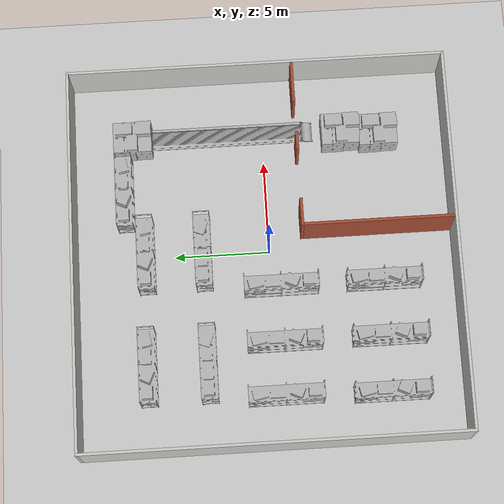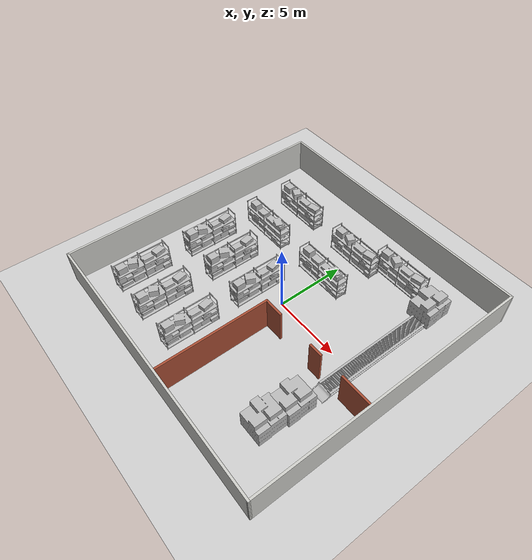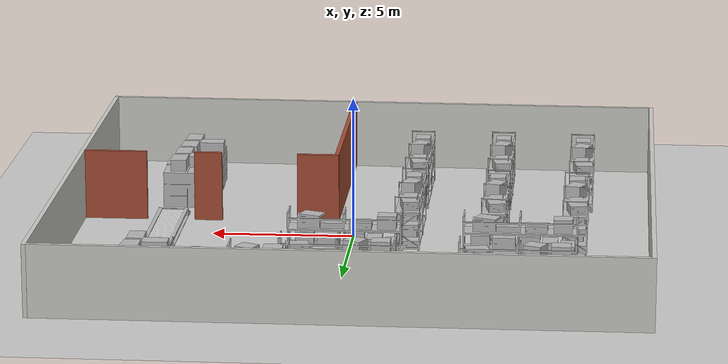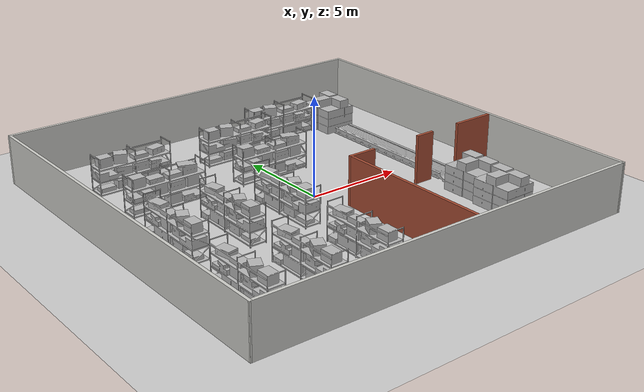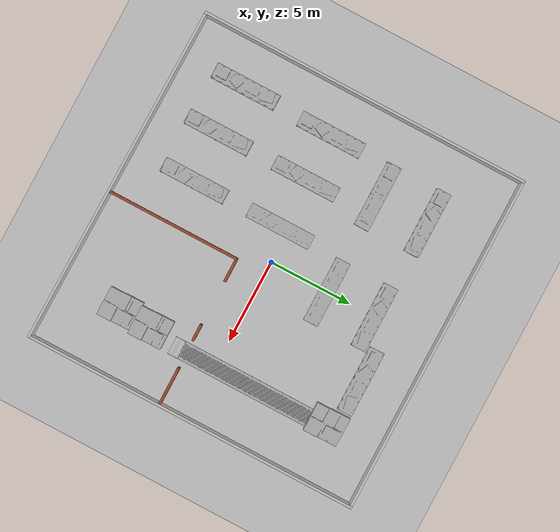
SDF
<sdf version="1.7">
 <world name="default">
  <light name="sun" type="directional">
   <pose>0 0 10 0 -0 0</pose>
   <diffuse>0.8 0.8 0.8 1</diffuse>
   <specular>0.2 0.2 0.2 1</specular>
   <attenuation>
    <range>1000</range>
    <constant>0.9</constant>
    <linear>0.01</linear>
    <quadratic>0.001</quadratic>
   </attenuation>
   <direction>-0.5 0.1 -0.9</direction>
   <spot><inner_angle>0</inner_angle><outer_angle>0</outer_angle><falloff>0</falloff></spot>
  </light>
  <model name="ground_plane">
   <static>1</static>
   <link name="link">
    <collision name="collision">
     <geometry><plane><normal>0 0 1</normal><size>100 100</size></plane></geometry>
     <surface><friction><ode><mu>100</mu><mu2>50</mu2></ode></friction></surface>
    </collision>
    <visual name="visual">
     <cast_shadows>0</cast_shadows>
     <geometry><plane><normal>0 0 1</normal><size>100 100</size></plane></geometry>
     <material>
      <script><uri>file://media/materials/scripts/gazebo.material</uri><name>Gazebo/Grey</name></script>
     </material>
    </visual>
   </link>
  </model>
  <gravity>0 0 -9.8</gravity>
  <magnetic_field>6e-06 2.3e-05 -4.2e-05</magnetic_field>
  <atmosphere type="adiabatic"/>
  <physics type="ode">
   <max_step_size>0.001</max_step_size>
   <real_time_factor>1</real_time_factor>
   <real_time_update_rate>1000</real_time_update_rate>
  </physics>
  <scene><ambient>0.4 0.4 0.4 1</ambient><background>0.7 0.7 0.7 1</background><shadows>1</shadows></scene>
  <spherical_coordinates>
   <surface_model>EARTH_WGS84</surface_model>
   <latitude_deg>0</latitude_deg>
   <longitude_deg>0</longitude_deg>
   <elevation>0</elevation>
   <heading_deg>0</heading_deg>
  </spherical_coordinates>
  <model name="warehouse">
   <pose>-0.2967 0.167068 0 0 -0 0</pose>
   <link name="Wall_0">
    <collision name="Wall_0_Collision">
     <geometry><box><size>20 0.15 2.5</size></box></geometry>
     <pose>0 0 1.25 0 -0 0</pose>
    </collision>
    <visual name="Wall_0_Visual">
     <pose>0 0 1.25 0 -0 0</pose>
     <geometry><box><size>20 0.15 2.5</size></box></geometry>
     <material>
      <script><uri>file://media/materials/scripts/gazebo.material</uri><name>Gazebo/CeilingTiled</name></script>
      <ambient>1 1 1 1</ambient>
     </material>
     <meta><layer>0</layer></meta>
    </visual>
    <pose>-10.175 0.106729 0 0 -0 -1.5708</pose>
   </link>
   <link name="Wall_2">
    <collision name="Wall_2_Collision">
     <geometry><box><size>20.5013 0.15 2.5</size></box></geometry>
     <pose>0 0 1.25 0 -0 0</pose>
    </collision>
    <visual name="Wall_2_Visual">
     <pose>0 0 1.25 0 -0 0</pose>
     <geometry><box><size>20.5013 0.15 2.5</size></box></geometry>
     <material>
      <script><uri>file://media/materials/scripts/gazebo.material</uri><name>Gazebo/CeilingTiled</name></script>
      <ambient>1 1 1 1</ambient>
     </material>
     <meta><layer>0</layer></meta>
    </visual>
    <pose>0 -9.93392 0 0 -0 -0.011366</pose>
   </link>
   <link name="Wall_3">
    <collision name="Wall_3_Collision">
     <geometry><box><size>20.25 0.15 2.5</size></box></geometry>
     <pose>0 0 1.25 0 -0 0</pose>
    </collision>
    <visual name="Wall_3_Visual">
     <pose>0 0 1.25 0 -0 0</pose>
     <geometry><box><size>20.25 0.15 2.5</size></box></geometry>
     <material>
      <script><uri>file://media/materials/scripts/gazebo.material</uri><name>Gazebo/CeilingTiled</name></script>
      <ambient>1 1 1 1</ambient>
     </material>
     <meta><layer>0</layer></meta>
    </visual>
    <pose>10.175 0.000423 0 0 -0 1.5708</pose>
   </link>
   <link name="Wall_4">
    <collision name="Wall_4_Collision">
     <geometry><box><size>20.5 0.15 2.5</size></box></geometry>
     <pose>0 0 1.25 0 -0 0</pose>
    </collision>
    <visual name="Wall_4_Visual">
     <pose>0 0 1.25 0 -0 0</pose>
     <geometry><box><size>20.5 0.15 2.5</size></box></geometry>
     <material>
      <script><uri>file://media/materials/scripts/gazebo.material</uri><name>Gazebo/CeilingTiled</name></script>
      <ambient>1 1 1 1</ambient>
     </material>
     <meta><layer>0</layer></meta>
    </visual>
    <pose>0 10.0504 0 0 -0 3.14159</pose>
   </link>
   <static>1</static>
  </model>
  <model name="warehouse_wall_1">
   <pose>4.90744 -4.85107 0 0 -0 0</pose>
   <link name="Wall_11">
    <collision name="Wall_11_Collision">
     <geometry><box><size>1 0.15 2.5</size></box></geometry>
     <pose>0 0 1.25 0 -0 0</pose>
    </collision>
    <visual name="Wall_11_Visual">
     <pose>0 0 1.25 0 -0 0</pose>
     <geometry><box><size>1 0.15 2.5</size></box></geometry>
     <material>
      <script><uri>file://media/materials/scripts/gazebo.material</uri><name>Gazebo/Bricks</name></script>
      <ambient>1 1 1 1</ambient>
     </material>
     <meta><layer>0</layer></meta>
    </visual>
    <pose>0.454305 3.05181 0 0 -0 0</pose>
   </link>
   <link name="Wall_13">
    <collision name="Wall_13_Collision">
     <geometry><box><size>2.25 0.15 2.5</size></box></geometry>
     <pose>0 0 1.25 0 -0 0</pose>
    </collision>
    <visual name="Wall_13_Visual">
     <pose>0 0 1.25 0 -0 0</pose>
     <geometry><box><size>2.25 0.15 2.5</size></box></geometry>
     <material>
      <script><uri>file://media/materials/scripts/gazebo.material</uri><name>Gazebo/Bricks</name></script>
      <ambient>1 1 1 1</ambient>
     </material>
     <meta><layer>0</layer></meta>
    </visual>
    <pose>3.78243 3.08349 0 0 -0 0</pose>
   </link>
   <link name="Wall_6">
    <collision name="Wall_6_Collision">
     <geometry><box><size>8 0.15 2.5</size></box></geometry>
     <pose>0 0 1.25 0 -0 0</pose>
    </collision>
    <visual name="Wall_6_Visual">
     <pose>0 0 1.25 0 -0 0</pose>
     <geometry><box><size>8 0.15 2.5</size></box></geometry>
     <material>
      <script><uri>file://media/materials/scripts/gazebo.material</uri><name>Gazebo/Bricks</name></script>
      <ambient>1 1 1 1</ambient>
     </material>
     <meta><layer>0</layer></meta>
    </visual>
    <pose>-4.17364 -0.851073 0 0 -0 -1.5708</pose>
   </link>
   <link name="Wall_8">
    <collision name="Wall_8_Collision">
     <geometry><box><size>1.5 0.15 2.5</size></box></geometry>
     <pose>0 0 1.25 0 -0 0</pose>
    </collision>
    <visual name="Wall_8_Visual">
     <pose>0 0 1.25 0 -0 0</pose>
     <geometry><box><size>1.5 0.15 2.5</size></box></geometry>
     <material>
      <script><uri>file://media/materials/scripts/gazebo.material</uri><name>Gazebo/Bricks</name></script>
      <ambient>1 1 1 1</ambient>
     </material>
     <meta><layer>0</layer></meta>
    </visual>
    <pose>-3.49864 3.07393 0 0 -0 0</pose>
   </link>
   <static>1</static>
  </model>
  <model name="shipping_container_conveyor_ariac">
   <static>1</static>
   <link name="link">
    <collision name="collision_belt_side_front">
     <pose>1.191 1.6275 0.32 0 -0 0</pose>
     <geometry><box><size>0.137 7.98 0.3</size></box></geometry>
    </collision>
    <collision name="collision_belt_side_back">
     <pose>0.268 1.6275 0.32 0 -0 0</pose>
     <geometry><box><size>0.145 7.98 0.3</size></box></geometry>
    </collision>
    <visual name="visual">
     <geometry>
      <mesh>
       <scale>1.3 0.7 1</scale>
       <uri>model://shipping_container_conveyor_ariac/meshes/ShippingContainer_Textured.obj</uri>
      </mesh>
     </geometry>
    </visual>
   </link>
   <pose>5.94716 0.254888 -0.15 0 -0 0</pose>
  </model>
  <model name="aws_robomaker_warehouse_ClutteringC_01">
   <link name="link">
    <inertial>
     <mass>1</mass>
     <inertia><ixx>1.558</ixx><ixy>0</ixy><ixz>0</ixz><iyy>1.821</iyy><iyz>0</iyz><izz>1.892</izz></inertia>
    </inertial>
    <collision name="collision">
     <geometry>
      <mesh>
       <uri>model://aws_robomaker_warehouse_ClutteringC_01/meshes/aws_robomaker_warehouse_ClutteringC_01_collision.DAE</uri>
       <scale>1 1 1</scale>
      </mesh>
     </geometry>
     <surface>
      <friction>
       <ode><mu>0.6</mu><mu2>0.6</mu2><fdir1>0 0 0</fdir1><slip1>0</slip1><slip2>0</slip2></ode>
       <torsional>
        <coefficient>1</coefficient>
        <patch_radius>0</patch_radius>
        <surface_radius>0</surface_radius>
        <use_patch_radius>1</use_patch_radius>
        <ode><slip>0</slip></ode>
       </torsional>
      </friction>
     </surface>
    </collision>
    <visual name="visual">
     <geometry>
      <mesh>
       <uri>model://aws_robomaker_warehouse_ClutteringC_01/meshes/aws_robomaker_warehouse_ClutteringC_01_visual.DAE</uri>
      </mesh>
     </geometry>
     <meta><layer>1</layer></meta>
    </visual>
   </link>
   <static>1</static>
   <pose>6.33701 -4.2 0 0 -0 0</pose>
  </model>
  <model name="aws_robomaker_warehouse_ShelfE_01">
   <link name="link">
    <inertial>
     <mass>30</mass>
     <inertia><ixx>907.144</ixx><ixy>0</ixy><ixz>0</ixz><iyy>104.95</iyy><iyz>0</iyz><izz>824.248</izz></inertia>
    </inertial>
    <collision name="collision">
     <geometry>
      <mesh>
       <uri>model://aws_robomaker_warehouse_ShelfE_01/meshes/aws_robomaker_warehouse_ShelfE_01_collision.DAE</uri>
       <scale>1 1 1</scale>
      </mesh>
     </geometry>
     <surface>
      <friction><ode><mu>0.2</mu><mu2>0.2</mu2><fdir1>0 0 0</fdir1><slip1>0</slip1><slip2>0</slip2></ode></friction>
     </surface>
    </collision>
    <visual name="visual">
     <geometry>
      <mesh>
       <uri>model://aws_robomaker_warehouse_ShelfE_01/meshes/aws_robomaker_warehouse_ShelfE_01_visual.DAE</uri>
      </mesh>
     </geometry>
     <meta><layer>1</layer></meta>
    </visual>
   </link>
   <static>1</static>
   <pose>-6 3.5 -0.7 0 -0 0</pose>
  </model>
  <model name="aws_robomaker_warehouse_ShelfE_01_0">
   <link name="link">
    <inertial>
     <mass>30</mass>
     <inertia><ixx>907.144</ixx><ixy>0</ixy><ixz>0</ixz><iyy>104.95</iyy><iyz>0</iyz><izz>824.248</izz></inertia>
    </inertial>
    <collision name="collision">
     <geometry>
      <mesh>
       <uri>model://aws_robomaker_warehouse_ShelfE_01/meshes/aws_robomaker_warehouse_ShelfE_01_collision.DAE</uri>
       <scale>1 1 1</scale>
      </mesh>
     </geometry>
     <surface>
      <friction><ode><mu>0.2</mu><mu2>0.2</mu2><fdir1>0 0 0</fdir1><slip1>0</slip1><slip2>0</slip2></ode></friction>
     </surface>
    </collision>
    <visual name="visual">
     <geometry>
      <mesh>
       <uri>model://aws_robomaker_warehouse_ShelfE_01/meshes/aws_robomaker_warehouse_ShelfE_01_visual.DAE</uri>
      </mesh>
     </geometry>
     <meta><layer>1</layer></meta>
    </visual>
   </link>
   <static>1</static>
   <pose>0 3.5 -0.7 0 -0 0</pose>
  </model>
  <model name="aws_robomaker_warehouse_ShelfD_01">
   <link name="link">
    <inertial>
     <mass>30</mass>
     <inertia><ixx>907.144</ixx><ixy>0</ixy><ixz>0</ixz><iyy>104.95</iyy><iyz>0</iyz><izz>824.248</izz></inertia>
    </inertial>
    <collision name="collision">
     <geometry>
      <mesh>
       <uri>model://aws_robomaker_warehouse_ShelfD_01/meshes/aws_robomaker_warehouse_ShelfD_01_collision.DAE</uri>
       <scale>1 1 1</scale>
      </mesh>
     </geometry>
     <surface>
      <friction><ode><mu>0.2</mu><mu2>0.2</mu2><fdir1>0 0 0</fdir1><slip1>0</slip1><slip2>0</slip2></ode></friction>
     </surface>
    </collision>
    <visual name="visual">
     <geometry>
      <mesh>
       <uri>model://aws_robomaker_warehouse_ShelfD_01/meshes/aws_robomaker_warehouse_ShelfD_01_visual.DAE</uri>
      </mesh>
     </geometry>
     <meta><layer>1</layer></meta>
    </visual>
   </link>
   <static>1</static>
   <pose>-6 6.63287 -0.7 0 -0 0</pose>
  </model>
  <model name="aws_robomaker_warehouse_ShelfD_01_0">
   <link name="link">
    <inertial>
     <mass>30</mass>
     <inertia><ixx>907.144</ixx><ixy>0</ixy><ixz>0</ixz><iyy>104.95</iyy><iyz>0</iyz><izz>824.248</izz></inertia>
    </inertial>
    <collision name="collision">
     <geometry>
      <mesh>
       <uri>model://aws_robomaker_warehouse_ShelfD_01/meshes/aws_robomaker_warehouse_ShelfD_01_collision.DAE</uri>
       <scale>1 1 1</scale>
      </mesh>
     </geometry>
     <surface>
      <friction><ode><mu>0.2</mu><mu2>0.2</mu2><fdir1>0 0 0</fdir1><slip1>0</slip1><slip2>0</slip2></ode></friction>
     </surface>
    </collision>
    <visual name="visual">
     <geometry>
      <mesh>
       <uri>model://aws_robomaker_warehouse_ShelfD_01/meshes/aws_robomaker_warehouse_ShelfD_01_visual.DAE</uri>
      </mesh>
     </geometry>
     <meta><layer>1</layer></meta>
    </visual>
   </link>
   <static>1</static>
   <pose>0 6.5 -0.7 0 -0 0</pose>
  </model>
  <model name="aws_robomaker_warehouse_ShelfD_01_1">
   <link name="link">
    <inertial>
     <mass>30</mass>
     <inertia><ixx>907.144</ixx><ixy>0</ixy><ixz>0</ixz><iyy>104.95</iyy><iyz>0</iyz><izz>824.248</izz></inertia>
    </inertial>
    <collision name="collision">
     <geometry>
      <mesh>
       <uri>model://aws_robomaker_warehouse_ShelfD_01/meshes/aws_robomaker_warehouse_ShelfD_01_collision.DAE</uri>
       <scale>1 1 1</scale>
      </mesh>
     </geometry>
     <surface>
      <friction><ode><mu>0.2</mu><mu2>0.2</mu2><fdir1>0 0 0</fdir1><slip1>0</slip1><slip2>0</slip2></ode></friction>
     </surface>
    </collision>
    <visual name="visual">
     <geometry>
      <mesh>
       <uri>model://aws_robomaker_warehouse_ShelfD_01/meshes/aws_robomaker_warehouse_ShelfD_01_visual.DAE</uri>
      </mesh>
     </geometry>
     <meta><layer>1</layer></meta>
    </visual>
   </link>
   <static>1</static>
   <pose>-2 -0.5 -0.7 0 -0 1.57</pose>
  </model>
  <model name="aws_robomaker_warehouse_ShelfD_01_1_clone">
   <link name="link">
    <inertial>
     <mass>30</mass>
     <inertia><ixx>907.144</ixx><ixy>0</ixy><ixz>0</ixz><iyy>104.95</iyy><iyz>0</iyz><izz>824.248</izz></inertia>
    </inertial>
    <collision name="collision">
     <geometry>
      <mesh>
       <uri>model://aws_robomaker_warehouse_ShelfD_01/meshes/aws_robomaker_warehouse_ShelfD_01_collision.DAE</uri>
       <scale>1 1 1</scale>
      </mesh>
     </geometry>
     <surface>
      <friction><ode><mu>0.2</mu><mu2>0.2</mu2><fdir1>0 0 0</fdir1><slip1>0</slip1><slip2>0</slip2></ode></friction>
     </surface>
    </collision>
    <visual name="visual">
     <geometry>
      <mesh>
       <uri>model://aws_robomaker_warehouse_ShelfD_01/meshes/aws_robomaker_warehouse_ShelfD_01_visual.DAE</uri>
      </mesh>
     </geometry>
     <meta><layer>1</layer></meta>
    </visual>
   </link>
   <static>1</static>
   <pose>-5 -0.5 -0.7 0 -0 1.57</pose>
  </model>
  <model name="aws_robomaker_warehouse_ShelfD_01_1_clone_0">
   <link name="link">
    <inertial>
     <mass>30</mass>
     <inertia><ixx>907.144</ixx><ixy>0</ixy><ixz>0</ixz><iyy>104.95</iyy><iyz>0</iyz><izz>824.248</izz></inertia>
    </inertial>
    <collision name="collision">
     <geometry>
      <mesh>
       <uri>model://aws_robomaker_warehouse_ShelfD_01/meshes/aws_robomaker_warehouse_ShelfD_01_collision.DAE</uri>
       <scale>1 1 1</scale>
      </mesh>
     </geometry>
     <surface>
      <friction><ode><mu>0.2</mu><mu2>0.2</mu2><fdir1>0 0 0</fdir1><slip1>0</slip1><slip2>0</slip2></ode></friction>
     </surface>
    </collision>
    <visual name="visual">
     <geometry>
      <mesh>
       <uri>model://aws_robomaker_warehouse_ShelfD_01/meshes/aws_robomaker_warehouse_ShelfD_01_visual.DAE</uri>
      </mesh>
     </geometry>
     <meta><layer>1</layer></meta>
    </visual>
   </link>
   <static>1</static>
   <pose>-2 -5.88998 -0.7 0 -0 1.57</pose>
  </model>
  <model name="aws_robomaker_warehouse_ShelfD_01_1_clone_1">
   <link name="link">
    <inertial>
     <mass>30</mass>
     <inertia><ixx>907.144</ixx><ixy>0</ixy><ixz>0</ixz><iyy>104.95</iyy><iyz>0</iyz><izz>824.248</izz></inertia>
    </inertial>
    <collision name="collision">
     <geometry>
      <mesh>
       <uri>model://aws_robomaker_warehouse_ShelfD_01/meshes/aws_robomaker_warehouse_ShelfD_01_collision.DAE</uri>
       <scale>1 1 1</scale>
      </mesh>
     </geometry>
     <surface>
      <friction><ode><mu>0.2</mu><mu2>0.2</mu2><fdir1>0 0 0</fdir1><slip1>0</slip1><slip2>0</slip2></ode></friction>
     </surface>
    </collision>
    <visual name="visual">
     <geometry>
      <mesh>
       <uri>model://aws_robomaker_warehouse_ShelfD_01/meshes/aws_robomaker_warehouse_ShelfD_01_visual.DAE</uri>
      </mesh>
     </geometry>
     <meta><layer>1</layer></meta>
    </visual>
   </link>
   <static>1</static>
   <pose>-5 -5.9682 -0.7 0 -0 1.57</pose>
  </model>
  <model name="aws_robomaker_warehouse_ClutteringC_01_1">
   <link name="link">
    <inertial>
     <mass>1</mass>
     <inertia><ixx>1.558</ixx><ixy>0</ixy><ixz>0</ixz><iyy>1.821</iyy><iyz>0</iyz><izz>1.892</izz></inertia>
    </inertial>
    <collision name="collision">
     <geometry>
      <mesh>
       <uri>model://aws_robomaker_warehouse_ClutteringC_01/meshes/aws_robomaker_warehouse_ClutteringC_01_collision.DAE</uri>
       <scale>1 1 1</scale>
      </mesh>
     </geometry>
     <surface>
      <friction>
       <ode><mu>0.6</mu><mu2>0.6</mu2><fdir1>0 0 0</fdir1><slip1>0</slip1><slip2>0</slip2></ode>
       <torsional>
        <coefficient>1</coefficient>
        <patch_radius>0</patch_radius>
        <surface_radius>0</surface_radius>
        <use_patch_radius>1</use_patch_radius>
        <ode><slip>0</slip></ode>
       </torsional>
      </friction>
     </surface>
    </collision>
    <visual name="visual">
     <geometry>
      <mesh>
       <uri>model://aws_robomaker_warehouse_ClutteringC_01/meshes/aws_robomaker_warehouse_ClutteringC_01_visual.DAE</uri>
      </mesh>
     </geometry>
     <meta><layer>1</layer></meta>
    </visual>
   </link>
   <static>1</static>
   <pose>6.49861 6.95891 0 0 -0 0</pose>
  </model>
  <model name="aws_robomaker_warehouse_ClutteringC_01_0">
   <link name="link">
    <inertial>
     <mass>1</mass>
     <inertia><ixx>1.558</ixx><ixy>0</ixy><ixz>0</ixz><iyy>1.821</iyy><iyz>0</iyz><izz>1.892</izz></inertia>
    </inertial>
    <collision name="collision">
     <geometry>
      <mesh>
       <uri>model://aws_robomaker_warehouse_ClutteringC_01/meshes/aws_robomaker_warehouse_ClutteringC_01_collision.DAE</uri>
       <scale>1 1 1</scale>
      </mesh>
     </geometry>
     <surface>
      <friction>
       <ode><mu>0.6</mu><mu2>0.6</mu2><fdir1>0 0 0</fdir1><slip1>0</slip1><slip2>0</slip2></ode>
       <torsional>
        <coefficient>1</coefficient>
        <patch_radius>0</patch_radius>
        <surface_radius>0</surface_radius>
        <use_patch_radius>1</use_patch_radius>
        <ode><slip>0</slip></ode>
       </torsional>
      </friction>
     </surface>
    </collision>
    <visual name="visual">
     <geometry>
      <mesh>
       <uri>model://aws_robomaker_warehouse_ClutteringC_01/meshes/aws_robomaker_warehouse_ClutteringC_01_visual.DAE</uri>
      </mesh>
     </geometry>
     <meta><layer>1</layer></meta>
    </visual>
   </link>
   <static>1</static>
   <pose>6.2 -6.2 0 0 -0 0</pose>
  </model>
  <model name="aws_robomaker_warehouse_ShelfD_01_1_clone_1_clone">
   <link name="link">
    <inertial>
     <mass>30</mass>
     <inertia><ixx>907.144</ixx><ixy>0</ixy><ixz>0</ixz><iyy>104.95</iyy><iyz>0</iyz><izz>824.248</izz></inertia>
    </inertial>
    <collision name="collision">
     <geometry>
      <mesh>
       <uri>model://aws_robomaker_warehouse_ShelfD_01/meshes/aws_robomaker_warehouse_ShelfD_01_collision.DAE</uri>
       <scale>1 1 1</scale>
      </mesh>
     </geometry>
     <surface>
      <friction><ode><mu>0.2</mu><mu2>0.2</mu2><fdir1>0 0 0</fdir1><slip1>0</slip1><slip2>0</slip2></ode></friction>
     </surface>
    </collision>
    <visual name="visual">
     <geometry>
      <mesh>
       <uri>model://aws_robomaker_warehouse_ShelfD_01/meshes/aws_robomaker_warehouse_ShelfD_01_visual.DAE</uri>
      </mesh>
     </geometry>
     <meta><layer>1</layer></meta>
    </visual>
   </link>
   <static>1</static>
   <pose>-7.95437 -5.83764 -0.7 0 -0 1.57</pose>
  </model>
  <model name="aws_robomaker_warehouse_ShelfD_01_1_clone_1_clone_0">
   <link name="link">
    <inertial>
     <mass>30</mass>
     <inertia><ixx>907.144</ixx><ixy>0</ixy><ixz>0</ixz><iyy>104.95</iyy><iyz>0</iyz><izz>824.248</izz></inertia>
    </inertial>
    <collision name="collision">
     <geometry>
      <mesh>
       <uri>model://aws_robomaker_warehouse_ShelfD_01/meshes/aws_robomaker_warehouse_ShelfD_01_collision.DAE</uri>
       <scale>1 1 1</scale>
      </mesh>
     </geometry>
     <surface>
      <friction><ode><mu>0.2</mu><mu2>0.2</mu2><fdir1>0 0 0</fdir1><slip1>0</slip1><slip2>0</slip2></ode></friction>
     </surface>
    </collision>
    <visual name="visual">
     <geometry>
      <mesh>
       <uri>model://aws_robomaker_warehouse_ShelfD_01/meshes/aws_robomaker_warehouse_ShelfD_01_visual.DAE</uri>
      </mesh>
     </geometry>
     <meta><layer>1</layer></meta>
    </visual>
   </link>
   <static>1</static>
   <pose>-7.82227 -0.391682 -0.7 0 -0 1.57</pose>
  </model>
  <model name="aws_robomaker_warehouse_ShelfD_01_0_clone">
   <link name="link">
    <inertial>
     <mass>30</mass>
     <inertia><ixx>907.144</ixx><ixy>0</ixy><ixz>0</ixz><iyy>104.95</iyy><iyz>0</iyz><izz>824.248</izz></inertia>
    </inertial>
    <collision name="collision">
     <geometry>
      <mesh>
       <uri>model://aws_robomaker_warehouse_ShelfD_01/meshes/aws_robomaker_warehouse_ShelfD_01_collision.DAE</uri>
       <scale>1 1 1</scale>
      </mesh>
     </geometry>
     <surface>
      <friction><ode><mu>0.2</mu><mu2>0.2</mu2><fdir1>0 0 0</fdir1><slip1>0</slip1><slip2>0</slip2></ode></friction>
     </surface>
    </collision>
    <visual name="visual">
     <geometry>
      <mesh>
       <uri>model://aws_robomaker_warehouse_ShelfD_01/meshes/aws_robomaker_warehouse_ShelfD_01_visual.DAE</uri>
      </mesh>
     </geometry>
     <meta><layer>1</layer></meta>
    </visual>
   </link>
   <static>1</static>
   <pose>3.5 7.5 -0.7 0 -0 0</pose>
  </model>
 </world>
</sdf>
